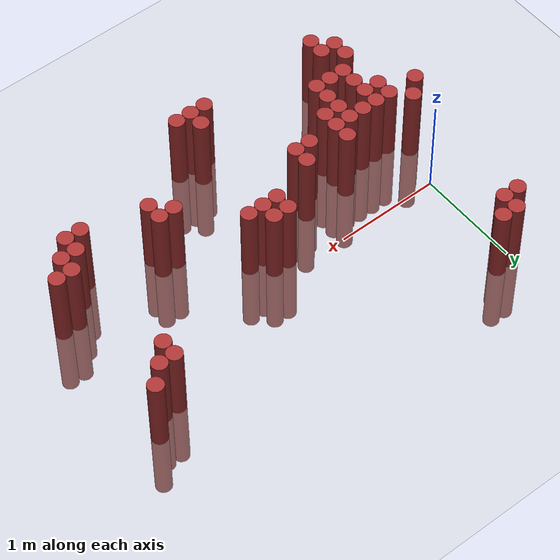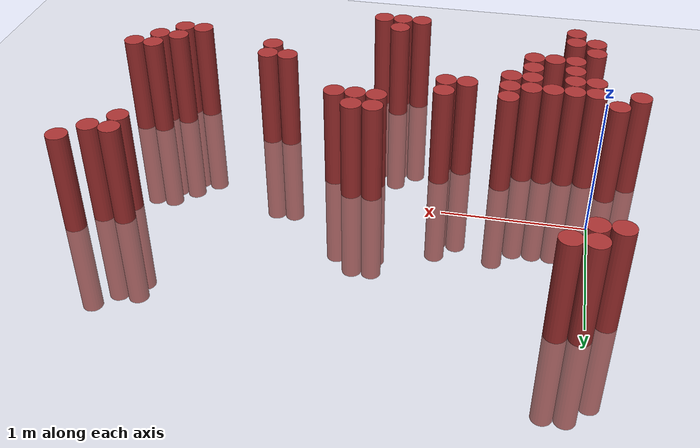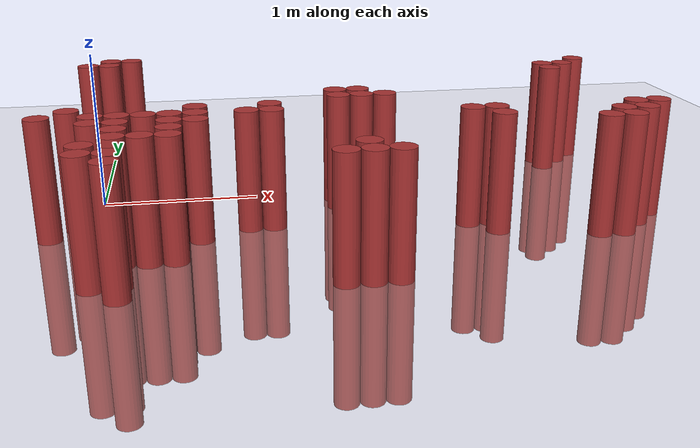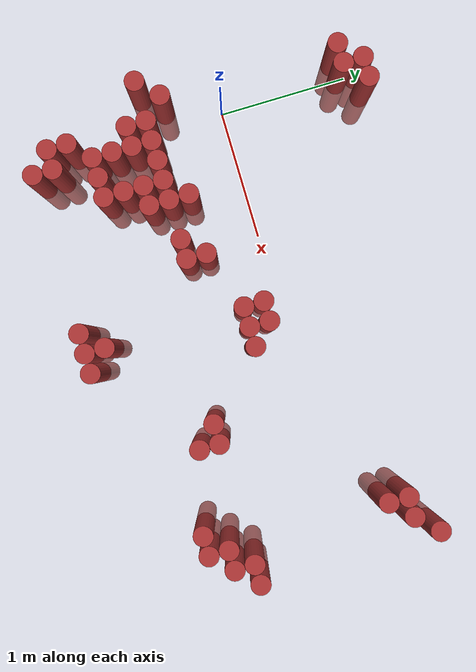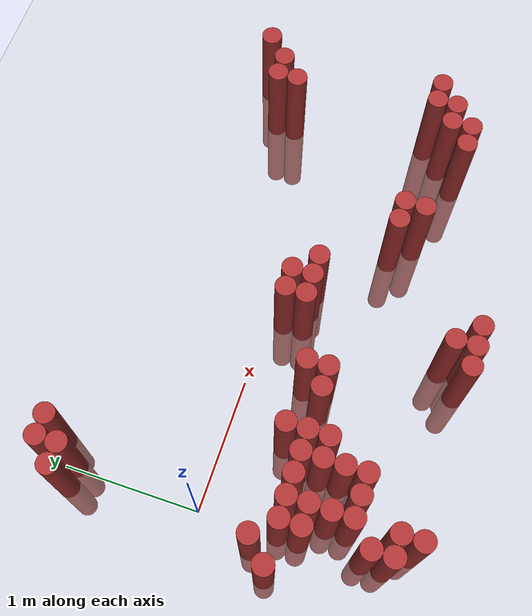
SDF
<sdf version="1.6">
 <world name="default">
  <model name="ground_plane">
   <static>1</static>
   <link name="link">
    <collision name="collision">
     <geometry><plane><normal>0 0 1</normal><size>100 100</size></plane></geometry>
     <surface><friction><ode><mu>100</mu><mu2>50</mu2></ode></friction></surface>
    </collision>
    <visual name="visual">
     <cast_shadows>0</cast_shadows>
     <geometry><plane><normal>0 0 1</normal><size>100 100</size></plane></geometry>
     <material>
      <script><uri>file://media/materials/scripts/gazebo.material</uri><name>Gazebo/Grey</name></script>
     </material>
    </visual>
   </link>
  </model>
  <model name="unit_cylinder_328">
   <static>1</static>
   <pose>-0.275000 -0.575000 0.000000 0.000000 0.000000 0.000000</pose>
   <link name="link">
    <inertial>
     <mass>1</mass>
     <inertia><ixx>0.145833</ixx><ixy>0</ixy><ixz>0</ixz><iyy>0.145833</iyy><iyz>0</iyz><izz>0.125</izz></inertia>
    </inertial>
    <collision name="collision">
     <geometry><cylinder><radius>0.075000</radius><length>1.5</length></cylinder></geometry>
    </collision>
    <visual name="visual">
     <geometry><cylinder><radius>0.075000</radius><length>1.5</length></cylinder></geometry>
     <material>
      <ambient>0.648000 0.192000 0.192000 1</ambient>
      <diffuse>0.648000 0.192000 0.192000 1</diffuse>
     </material>
     <material>
      <script><name>Gazebo/Grey</name><uri>file://media/materials/scripts/gazebo.material</uri></script>
     </material>
    </visual>
   </link>
  </model>
  <model name="unit_cylinder_331">
   <static>1</static>
   <pose>-0.125000 -0.425000 0.000000 0.000000 0.000000 0.000000</pose>
   <link name="link">
    <inertial>
     <mass>1</mass>
     <inertia><ixx>0.145833</ixx><ixy>0</ixy><ixz>0</ixz><iyy>0.145833</iyy><iyz>0</iyz><izz>0.125</izz></inertia>
    </inertial>
    <collision name="collision">
     <geometry><cylinder><radius>0.075000</radius><length>1.5</length></cylinder></geometry>
    </collision>
    <visual name="visual">
     <geometry><cylinder><radius>0.075000</radius><length>1.5</length></cylinder></geometry>
     <material>
      <ambient>0.648000 0.192000 0.192000 1</ambient>
      <diffuse>0.648000 0.192000 0.192000 1</diffuse>
     </material>
     <material>
      <script><name>Gazebo/Grey</name><uri>file://media/materials/scripts/gazebo.material</uri></script>
     </material>
    </visual>
   </link>
  </model>
  <model name="unit_cylinder_332">
   <static>1</static>
   <pose>-0.125000 0.925000 0.000000 0.000000 0.000000 0.000000</pose>
   <link name="link">
    <inertial>
     <mass>1</mass>
     <inertia><ixx>0.145833</ixx><ixy>0</ixy><ixz>0</ixz><iyy>0.145833</iyy><iyz>0</iyz><izz>0.125</izz></inertia>
    </inertial>
    <collision name="collision">
     <geometry><cylinder><radius>0.075000</radius><length>1.5</length></cylinder></geometry>
    </collision>
    <visual name="visual">
     <geometry><cylinder><radius>0.075000</radius><length>1.5</length></cylinder></geometry>
     <material>
      <ambient>0.648000 0.192000 0.192000 1</ambient>
      <diffuse>0.648000 0.192000 0.192000 1</diffuse>
     </material>
     <material>
      <script><name>Gazebo/Grey</name><uri>file://media/materials/scripts/gazebo.material</uri></script>
     </material>
    </visual>
   </link>
  </model>
  <model name="unit_cylinder_334">
   <static>1</static>
   <pose>0.025000 -1.325000 0.000000 0.000000 0.000000 0.000000</pose>
   <link name="link">
    <inertial>
     <mass>1</mass>
     <inertia><ixx>0.145833</ixx><ixy>0</ixy><ixz>0</ixz><iyy>0.145833</iyy><iyz>0</iyz><izz>0.125</izz></inertia>
    </inertial>
    <collision name="collision">
     <geometry><cylinder><radius>0.075000</radius><length>1.5</length></cylinder></geometry>
    </collision>
    <visual name="visual">
     <geometry><cylinder><radius>0.075000</radius><length>1.5</length></cylinder></geometry>
     <material>
      <ambient>0.648000 0.192000 0.192000 1</ambient>
      <diffuse>0.648000 0.192000 0.192000 1</diffuse>
     </material>
     <material>
      <script><name>Gazebo/Grey</name><uri>file://media/materials/scripts/gazebo.material</uri></script>
     </material>
    </visual>
   </link>
  </model>
  <model name="unit_cylinder_335">
   <static>1</static>
   <pose>0.025000 -1.175000 0.000000 0.000000 0.000000 0.000000</pose>
   <link name="link">
    <inertial>
     <mass>1</mass>
     <inertia><ixx>0.145833</ixx><ixy>0</ixy><ixz>0</ixz><iyy>0.145833</iyy><iyz>0</iyz><izz>0.125</izz></inertia>
    </inertial>
    <collision name="collision">
     <geometry><cylinder><radius>0.075000</radius><length>1.5</length></cylinder></geometry>
    </collision>
    <visual name="visual">
     <geometry><cylinder><radius>0.075000</radius><length>1.5</length></cylinder></geometry>
     <material>
      <ambient>0.648000 0.192000 0.192000 1</ambient>
      <diffuse>0.648000 0.192000 0.192000 1</diffuse>
     </material>
     <material>
      <script><name>Gazebo/Grey</name><uri>file://media/materials/scripts/gazebo.material</uri></script>
     </material>
    </visual>
   </link>
  </model>
  <model name="unit_cylinder_336">
   <static>1</static>
   <pose>0.025000 -0.725000 0.000000 0.000000 0.000000 0.000000</pose>
   <link name="link">
    <inertial>
     <mass>1</mass>
     <inertia><ixx>0.145833</ixx><ixy>0</ixy><ixz>0</ixz><iyy>0.145833</iyy><iyz>0</iyz><izz>0.125</izz></inertia>
    </inertial>
    <collision name="collision">
     <geometry><cylinder><radius>0.075000</radius><length>1.5</length></cylinder></geometry>
    </collision>
    <visual name="visual">
     <geometry><cylinder><radius>0.075000</radius><length>1.5</length></cylinder></geometry>
     <material>
      <ambient>0.648000 0.192000 0.192000 1</ambient>
      <diffuse>0.648000 0.192000 0.192000 1</diffuse>
     </material>
     <material>
      <script><name>Gazebo/Grey</name><uri>file://media/materials/scripts/gazebo.material</uri></script>
     </material>
    </visual>
   </link>
  </model>
  <model name="unit_cylinder_337">
   <static>1</static>
   <pose>0.025000 -0.575000 0.000000 0.000000 0.000000 0.000000</pose>
   <link name="link">
    <inertial>
     <mass>1</mass>
     <inertia><ixx>0.145833</ixx><ixy>0</ixy><ixz>0</ixz><iyy>0.145833</iyy><iyz>0</iyz><izz>0.125</izz></inertia>
    </inertial>
    <collision name="collision">
     <geometry><cylinder><radius>0.075000</radius><length>1.5</length></cylinder></geometry>
    </collision>
    <visual name="visual">
     <geometry><cylinder><radius>0.075000</radius><length>1.5</length></cylinder></geometry>
     <material>
      <ambient>0.648000 0.192000 0.192000 1</ambient>
      <diffuse>0.648000 0.192000 0.192000 1</diffuse>
     </material>
     <material>
      <script><name>Gazebo/Grey</name><uri>file://media/materials/scripts/gazebo.material</uri></script>
     </material>
    </visual>
   </link>
  </model>
  <model name="unit_cylinder_338">
   <static>1</static>
   <pose>0.025000 0.925000 0.000000 0.000000 0.000000 0.000000</pose>
   <link name="link">
    <inertial>
     <mass>1</mass>
     <inertia><ixx>0.145833</ixx><ixy>0</ixy><ixz>0</ixz><iyy>0.145833</iyy><iyz>0</iyz><izz>0.125</izz></inertia>
    </inertial>
    <collision name="collision">
     <geometry><cylinder><radius>0.075000</radius><length>1.5</length></cylinder></geometry>
    </collision>
    <visual name="visual">
     <geometry><cylinder><radius>0.075000</radius><length>1.5</length></cylinder></geometry>
     <material>
      <ambient>0.648000 0.192000 0.192000 1</ambient>
      <diffuse>0.648000 0.192000 0.192000 1</diffuse>
     </material>
     <material>
      <script><name>Gazebo/Grey</name><uri>file://media/materials/scripts/gazebo.material</uri></script>
     </material>
    </visual>
   </link>
  </model>
  <model name="unit_cylinder_339">
   <static>1</static>
   <pose>0.025000 1.075000 0.000000 0.000000 0.000000 0.000000</pose>
   <link name="link">
    <inertial>
     <mass>1</mass>
     <inertia><ixx>0.145833</ixx><ixy>0</ixy><ixz>0</ixz><iyy>0.145833</iyy><iyz>0</iyz><izz>0.125</izz></inertia>
    </inertial>
    <collision name="collision">
     <geometry><cylinder><radius>0.075000</radius><length>1.5</length></cylinder></geometry>
    </collision>
    <visual name="visual">
     <geometry><cylinder><radius>0.075000</radius><length>1.5</length></cylinder></geometry>
     <material>
      <ambient>0.648000 0.192000 0.192000 1</ambient>
      <diffuse>0.648000 0.192000 0.192000 1</diffuse>
     </material>
     <material>
      <script><name>Gazebo/Grey</name><uri>file://media/materials/scripts/gazebo.material</uri></script>
     </material>
    </visual>
   </link>
  </model>
  <model name="unit_cylinder_342">
   <static>1</static>
   <pose>0.175000 -1.475000 0.000000 0.000000 0.000000 0.000000</pose>
   <link name="link">
    <inertial>
     <mass>1</mass>
     <inertia><ixx>0.145833</ixx><ixy>0</ixy><ixz>0</ixz><iyy>0.145833</iyy><iyz>0</iyz><izz>0.125</izz></inertia>
    </inertial>
    <collision name="collision">
     <geometry><cylinder><radius>0.075000</radius><length>1.5</length></cylinder></geometry>
    </collision>
    <visual name="visual">
     <geometry><cylinder><radius>0.075000</radius><length>1.5</length></cylinder></geometry>
     <material>
      <ambient>0.648000 0.192000 0.192000 1</ambient>
      <diffuse>0.648000 0.192000 0.192000 1</diffuse>
     </material>
     <material>
      <script><name>Gazebo/Grey</name><uri>file://media/materials/scripts/gazebo.material</uri></script>
     </material>
    </visual>
   </link>
  </model>
  <model name="unit_cylinder_343">
   <static>1</static>
   <pose>0.175000 -1.325000 0.000000 0.000000 0.000000 0.000000</pose>
   <link name="link">
    <inertial>
     <mass>1</mass>
     <inertia><ixx>0.145833</ixx><ixy>0</ixy><ixz>0</ixz><iyy>0.145833</iyy><iyz>0</iyz><izz>0.125</izz></inertia>
    </inertial>
    <collision name="collision">
     <geometry><cylinder><radius>0.075000</radius><length>1.5</length></cylinder></geometry>
    </collision>
    <visual name="visual">
     <geometry><cylinder><radius>0.075000</radius><length>1.5</length></cylinder></geometry>
     <material>
      <ambient>0.648000 0.192000 0.192000 1</ambient>
      <diffuse>0.648000 0.192000 0.192000 1</diffuse>
     </material>
     <material>
      <script><name>Gazebo/Grey</name><uri>file://media/materials/scripts/gazebo.material</uri></script>
     </material>
    </visual>
   </link>
  </model>
  <model name="unit_cylinder_344">
   <static>1</static>
   <pose>0.175000 -1.025000 0.000000 0.000000 0.000000 0.000000</pose>
   <link name="link">
    <inertial>
     <mass>1</mass>
     <inertia><ixx>0.145833</ixx><ixy>0</ixy><ixz>0</ixz><iyy>0.145833</iyy><iyz>0</iyz><izz>0.125</izz></inertia>
    </inertial>
    <collision name="collision">
     <geometry><cylinder><radius>0.075000</radius><length>1.5</length></cylinder></geometry>
    </collision>
    <visual name="visual">
     <geometry><cylinder><radius>0.075000</radius><length>1.5</length></cylinder></geometry>
     <material>
      <ambient>0.648000 0.192000 0.192000 1</ambient>
      <diffuse>0.648000 0.192000 0.192000 1</diffuse>
     </material>
     <material>
      <script><name>Gazebo/Grey</name><uri>file://media/materials/scripts/gazebo.material</uri></script>
     </material>
    </visual>
   </link>
  </model>
  <model name="unit_cylinder_345">
   <static>1</static>
   <pose>0.175000 -0.875000 0.000000 0.000000 0.000000 0.000000</pose>
   <link name="link">
    <inertial>
     <mass>1</mass>
     <inertia><ixx>0.145833</ixx><ixy>0</ixy><ixz>0</ixz><iyy>0.145833</iyy><iyz>0</iyz><izz>0.125</izz></inertia>
    </inertial>
    <collision name="collision">
     <geometry><cylinder><radius>0.075000</radius><length>1.5</length></cylinder></geometry>
    </collision>
    <visual name="visual">
     <geometry><cylinder><radius>0.075000</radius><length>1.5</length></cylinder></geometry>
     <material>
      <ambient>0.648000 0.192000 0.192000 1</ambient>
      <diffuse>0.648000 0.192000 0.192000 1</diffuse>
     </material>
     <material>
      <script><name>Gazebo/Grey</name><uri>file://media/materials/scripts/gazebo.material</uri></script>
     </material>
    </visual>
   </link>
  </model>
  <model name="unit_cylinder_346">
   <static>1</static>
   <pose>0.175000 -0.725000 0.000000 0.000000 0.000000 0.000000</pose>
   <link name="link">
    <inertial>
     <mass>1</mass>
     <inertia><ixx>0.145833</ixx><ixy>0</ixy><ixz>0</ixz><iyy>0.145833</iyy><iyz>0</iyz><izz>0.125</izz></inertia>
    </inertial>
    <collision name="collision">
     <geometry><cylinder><radius>0.075000</radius><length>1.5</length></cylinder></geometry>
    </collision>
    <visual name="visual">
     <geometry><cylinder><radius>0.075000</radius><length>1.5</length></cylinder></geometry>
     <material>
      <ambient>0.648000 0.192000 0.192000 1</ambient>
      <diffuse>0.648000 0.192000 0.192000 1</diffuse>
     </material>
     <material>
      <script><name>Gazebo/Grey</name><uri>file://media/materials/scripts/gazebo.material</uri></script>
     </material>
    </visual>
   </link>
  </model>
  <model name="unit_cylinder_347">
   <static>1</static>
   <pose>0.175000 -0.575000 0.000000 0.000000 0.000000 0.000000</pose>
   <link name="link">
    <inertial>
     <mass>1</mass>
     <inertia><ixx>0.145833</ixx><ixy>0</ixy><ixz>0</ixz><iyy>0.145833</iyy><iyz>0</iyz><izz>0.125</izz></inertia>
    </inertial>
    <collision name="collision">
     <geometry><cylinder><radius>0.075000</radius><length>1.5</length></cylinder></geometry>
    </collision>
    <visual name="visual">
     <geometry><cylinder><radius>0.075000</radius><length>1.5</length></cylinder></geometry>
     <material>
      <ambient>0.648000 0.192000 0.192000 1</ambient>
      <diffuse>0.648000 0.192000 0.192000 1</diffuse>
     </material>
     <material>
      <script><name>Gazebo/Grey</name><uri>file://media/materials/scripts/gazebo.material</uri></script>
     </material>
    </visual>
   </link>
  </model>
  <model name="unit_cylinder_348">
   <static>1</static>
   <pose>0.175000 1.075000 0.000000 0.000000 0.000000 0.000000</pose>
   <link name="link">
    <inertial>
     <mass>1</mass>
     <inertia><ixx>0.145833</ixx><ixy>0</ixy><ixz>0</ixz><iyy>0.145833</iyy><iyz>0</iyz><izz>0.125</izz></inertia>
    </inertial>
    <collision name="collision">
     <geometry><cylinder><radius>0.075000</radius><length>1.5</length></cylinder></geometry>
    </collision>
    <visual name="visual">
     <geometry><cylinder><radius>0.075000</radius><length>1.5</length></cylinder></geometry>
     <material>
      <ambient>0.648000 0.192000 0.192000 1</ambient>
      <diffuse>0.648000 0.192000 0.192000 1</diffuse>
     </material>
     <material>
      <script><name>Gazebo/Grey</name><uri>file://media/materials/scripts/gazebo.material</uri></script>
     </material>
    </visual>
   </link>
  </model>
  <model name="unit_cylinder_355">
   <static>1</static>
   <pose>0.325000 -1.025000 0.000000 0.000000 0.000000 0.000000</pose>
   <link name="link">
    <inertial>
     <mass>1</mass>
     <inertia><ixx>0.145833</ixx><ixy>0</ixy><ixz>0</ixz><iyy>0.145833</iyy><iyz>0</iyz><izz>0.125</izz></inertia>
    </inertial>
    <collision name="collision">
     <geometry><cylinder><radius>0.075000</radius><length>1.5</length></cylinder></geometry>
    </collision>
    <visual name="visual">
     <geometry><cylinder><radius>0.075000</radius><length>1.5</length></cylinder></geometry>
     <material>
      <ambient>0.648000 0.192000 0.192000 1</ambient>
      <diffuse>0.648000 0.192000 0.192000 1</diffuse>
     </material>
     <material>
      <script><name>Gazebo/Grey</name><uri>file://media/materials/scripts/gazebo.material</uri></script>
     </material>
    </visual>
   </link>
  </model>
  <model name="unit_cylinder_356">
   <static>1</static>
   <pose>0.325000 -0.575000 0.000000 0.000000 0.000000 0.000000</pose>
   <link name="link">
    <inertial>
     <mass>1</mass>
     <inertia><ixx>0.145833</ixx><ixy>0</ixy><ixz>0</ixz><iyy>0.145833</iyy><iyz>0</iyz><izz>0.125</izz></inertia>
    </inertial>
    <collision name="collision">
     <geometry><cylinder><radius>0.075000</radius><length>1.5</length></cylinder></geometry>
    </collision>
    <visual name="visual">
     <geometry><cylinder><radius>0.075000</radius><length>1.5</length></cylinder></geometry>
     <material>
      <ambient>0.648000 0.192000 0.192000 1</ambient>
      <diffuse>0.648000 0.192000 0.192000 1</diffuse>
     </material>
     <material>
      <script><name>Gazebo/Grey</name><uri>file://media/materials/scripts/gazebo.material</uri></script>
     </material>
    </visual>
   </link>
  </model>
  <model name="unit_cylinder_361">
   <static>1</static>
   <pose>0.475000 -1.025000 0.000000 0.000000 0.000000 0.000000</pose>
   <link name="link">
    <inertial>
     <mass>1</mass>
     <inertia><ixx>0.145833</ixx><ixy>0</ixy><ixz>0</ixz><iyy>0.145833</iyy><iyz>0</iyz><izz>0.125</izz></inertia>
    </inertial>
    <collision name="collision">
     <geometry><cylinder><radius>0.075000</radius><length>1.5</length></cylinder></geometry>
    </collision>
    <visual name="visual">
     <geometry><cylinder><radius>0.075000</radius><length>1.5</length></cylinder></geometry>
     <material>
      <ambient>0.648000 0.192000 0.192000 1</ambient>
      <diffuse>0.648000 0.192000 0.192000 1</diffuse>
     </material>
     <material>
      <script><name>Gazebo/Grey</name><uri>file://media/materials/scripts/gazebo.material</uri></script>
     </material>
    </visual>
   </link>
  </model>
  <model name="unit_cylinder_362">
   <static>1</static>
   <pose>0.475000 -0.875000 0.000000 0.000000 0.000000 0.000000</pose>
   <link name="link">
    <inertial>
     <mass>1</mass>
     <inertia><ixx>0.145833</ixx><ixy>0</ixy><ixz>0</ixz><iyy>0.145833</iyy><iyz>0</iyz><izz>0.125</izz></inertia>
    </inertial>
    <collision name="collision">
     <geometry><cylinder><radius>0.075000</radius><length>1.5</length></cylinder></geometry>
    </collision>
    <visual name="visual">
     <geometry><cylinder><radius>0.075000</radius><length>1.5</length></cylinder></geometry>
     <material>
      <ambient>0.648000 0.192000 0.192000 1</ambient>
      <diffuse>0.648000 0.192000 0.192000 1</diffuse>
     </material>
     <material>
      <script><name>Gazebo/Grey</name><uri>file://media/materials/scripts/gazebo.material</uri></script>
     </material>
    </visual>
   </link>
  </model>
  <model name="unit_cylinder_363">
   <static>1</static>
   <pose>0.475000 -0.725000 0.000000 0.000000 0.000000 0.000000</pose>
   <link name="link">
    <inertial>
     <mass>1</mass>
     <inertia><ixx>0.145833</ixx><ixy>0</ixy><ixz>0</ixz><iyy>0.145833</iyy><iyz>0</iyz><izz>0.125</izz></inertia>
    </inertial>
    <collision name="collision">
     <geometry><cylinder><radius>0.075000</radius><length>1.5</length></cylinder></geometry>
    </collision>
    <visual name="visual">
     <geometry><cylinder><radius>0.075000</radius><length>1.5</length></cylinder></geometry>
     <material>
      <ambient>0.648000 0.192000 0.192000 1</ambient>
      <diffuse>0.648000 0.192000 0.192000 1</diffuse>
     </material>
     <material>
      <script><name>Gazebo/Grey</name><uri>file://media/materials/scripts/gazebo.material</uri></script>
     </material>
    </visual>
   </link>
  </model>
  <model name="unit_cylinder_364">
   <static>1</static>
   <pose>0.475000 -0.575000 0.000000 0.000000 0.000000 0.000000</pose>
   <link name="link">
    <inertial>
     <mass>1</mass>
     <inertia><ixx>0.145833</ixx><ixy>0</ixy><ixz>0</ixz><iyy>0.145833</iyy><iyz>0</iyz><izz>0.125</izz></inertia>
    </inertial>
    <collision name="collision">
     <geometry><cylinder><radius>0.075000</radius><length>1.5</length></cylinder></geometry>
    </collision>
    <visual name="visual">
     <geometry><cylinder><radius>0.075000</radius><length>1.5</length></cylinder></geometry>
     <material>
      <ambient>0.648000 0.192000 0.192000 1</ambient>
      <diffuse>0.648000 0.192000 0.192000 1</diffuse>
     </material>
     <material>
      <script><name>Gazebo/Grey</name><uri>file://media/materials/scripts/gazebo.material</uri></script>
     </material>
    </visual>
   </link>
  </model>
  <model name="unit_cylinder_369">
   <static>1</static>
   <pose>0.625000 -0.725000 0.000000 0.000000 0.000000 0.000000</pose>
   <link name="link">
    <inertial>
     <mass>1</mass>
     <inertia><ixx>0.145833</ixx><ixy>0</ixy><ixz>0</ixz><iyy>0.145833</iyy><iyz>0</iyz><izz>0.125</izz></inertia>
    </inertial>
    <collision name="collision">
     <geometry><cylinder><radius>0.075000</radius><length>1.5</length></cylinder></geometry>
    </collision>
    <visual name="visual">
     <geometry><cylinder><radius>0.075000</radius><length>1.5</length></cylinder></geometry>
     <material>
      <ambient>0.648000 0.192000 0.192000 1</ambient>
      <diffuse>0.648000 0.192000 0.192000 1</diffuse>
     </material>
     <material>
      <script><name>Gazebo/Grey</name><uri>file://media/materials/scripts/gazebo.material</uri></script>
     </material>
    </visual>
   </link>
  </model>
  <model name="unit_cylinder_370">
   <static>1</static>
   <pose>0.625000 -0.575000 0.000000 0.000000 0.000000 0.000000</pose>
   <link name="link">
    <inertial>
     <mass>1</mass>
     <inertia><ixx>0.145833</ixx><ixy>0</ixy><ixz>0</ixz><iyy>0.145833</iyy><iyz>0</iyz><izz>0.125</izz></inertia>
    </inertial>
    <collision name="collision">
     <geometry><cylinder><radius>0.075000</radius><length>1.5</length></cylinder></geometry>
    </collision>
    <visual name="visual">
     <geometry><cylinder><radius>0.075000</radius><length>1.5</length></cylinder></geometry>
     <material>
      <ambient>0.648000 0.192000 0.192000 1</ambient>
      <diffuse>0.648000 0.192000 0.192000 1</diffuse>
     </material>
     <material>
      <script><name>Gazebo/Grey</name><uri>file://media/materials/scripts/gazebo.material</uri></script>
     </material>
    </visual>
   </link>
  </model>
  <model name="unit_cylinder_371">
   <static>1</static>
   <pose>0.625000 -0.425000 0.000000 0.000000 0.000000 0.000000</pose>
   <link name="link">
    <inertial>
     <mass>1</mass>
     <inertia><ixx>0.145833</ixx><ixy>0</ixy><ixz>0</ixz><iyy>0.145833</iyy><iyz>0</iyz><izz>0.125</izz></inertia>
    </inertial>
    <collision name="collision">
     <geometry><cylinder><radius>0.075000</radius><length>1.5</length></cylinder></geometry>
    </collision>
    <visual name="visual">
     <geometry><cylinder><radius>0.075000</radius><length>1.5</length></cylinder></geometry>
     <material>
      <ambient>0.648000 0.192000 0.192000 1</ambient>
      <diffuse>0.648000 0.192000 0.192000 1</diffuse>
     </material>
     <material>
      <script><name>Gazebo/Grey</name><uri>file://media/materials/scripts/gazebo.material</uri></script>
     </material>
    </visual>
   </link>
  </model>
  <model name="unit_cylinder_384">
   <static>1</static>
   <pose>0.925000 -0.575000 0.000000 0.000000 0.000000 0.000000</pose>
   <link name="link">
    <inertial>
     <mass>1</mass>
     <inertia><ixx>0.145833</ixx><ixy>0</ixy><ixz>0</ixz><iyy>0.145833</iyy><iyz>0</iyz><izz>0.125</izz></inertia>
    </inertial>
    <collision name="collision">
     <geometry><cylinder><radius>0.075000</radius><length>1.5</length></cylinder></geometry>
    </collision>
    <visual name="visual">
     <geometry><cylinder><radius>0.075000</radius><length>1.5</length></cylinder></geometry>
     <material>
      <ambient>0.648000 0.192000 0.192000 1</ambient>
      <diffuse>0.648000 0.192000 0.192000 1</diffuse>
     </material>
     <material>
      <script><name>Gazebo/Grey</name><uri>file://media/materials/scripts/gazebo.material</uri></script>
     </material>
    </visual>
   </link>
  </model>
  <model name="unit_cylinder_389">
   <static>1</static>
   <pose>1.075000 -0.575000 0.000000 0.000000 0.000000 0.000000</pose>
   <link name="link">
    <inertial>
     <mass>1</mass>
     <inertia><ixx>0.145833</ixx><ixy>0</ixy><ixz>0</ixz><iyy>0.145833</iyy><iyz>0</iyz><izz>0.125</izz></inertia>
    </inertial>
    <collision name="collision">
     <geometry><cylinder><radius>0.075000</radius><length>1.5</length></cylinder></geometry>
    </collision>
    <visual name="visual">
     <geometry><cylinder><radius>0.075000</radius><length>1.5</length></cylinder></geometry>
     <material>
      <ambient>0.648000 0.192000 0.192000 1</ambient>
      <diffuse>0.648000 0.192000 0.192000 1</diffuse>
     </material>
     <material>
      <script><name>Gazebo/Grey</name><uri>file://media/materials/scripts/gazebo.material</uri></script>
     </material>
    </visual>
   </link>
  </model>
  <model name="unit_cylinder_390">
   <static>1</static>
   <pose>1.075000 -0.425000 0.000000 0.000000 0.000000 0.000000</pose>
   <link name="link">
    <inertial>
     <mass>1</mass>
     <inertia><ixx>0.145833</ixx><ixy>0</ixy><ixz>0</ixz><iyy>0.145833</iyy><iyz>0</iyz><izz>0.125</izz></inertia>
    </inertial>
    <collision name="collision">
     <geometry><cylinder><radius>0.075000</radius><length>1.5</length></cylinder></geometry>
    </collision>
    <visual name="visual">
     <geometry><cylinder><radius>0.075000</radius><length>1.5</length></cylinder></geometry>
     <material>
      <ambient>0.648000 0.192000 0.192000 1</ambient>
      <diffuse>0.648000 0.192000 0.192000 1</diffuse>
     </material>
     <material>
      <script><name>Gazebo/Grey</name><uri>file://media/materials/scripts/gazebo.material</uri></script>
     </material>
    </visual>
   </link>
  </model>
  <model name="unit_cylinder_392">
   <static>1</static>
   <pose>1.375000 -1.475000 0.000000 0.000000 0.000000 0.000000</pose>
   <link name="link">
    <inertial>
     <mass>1</mass>
     <inertia><ixx>0.145833</ixx><ixy>0</ixy><ixz>0</ixz><iyy>0.145833</iyy><iyz>0</iyz><izz>0.125</izz></inertia>
    </inertial>
    <collision name="collision">
     <geometry><cylinder><radius>0.075000</radius><length>1.5</length></cylinder></geometry>
    </collision>
    <visual name="visual">
     <geometry><cylinder><radius>0.075000</radius><length>1.5</length></cylinder></geometry>
     <material>
      <ambient>0.648000 0.192000 0.192000 1</ambient>
      <diffuse>0.648000 0.192000 0.192000 1</diffuse>
     </material>
     <material>
      <script><name>Gazebo/Grey</name><uri>file://media/materials/scripts/gazebo.material</uri></script>
     </material>
    </visual>
   </link>
  </model>
  <model name="unit_cylinder_393">
   <static>1</static>
   <pose>1.525000 -1.475000 0.000000 0.000000 0.000000 0.000000</pose>
   <link name="link">
    <inertial>
     <mass>1</mass>
     <inertia><ixx>0.145833</ixx><ixy>0</ixy><ixz>0</ixz><iyy>0.145833</iyy><iyz>0</iyz><izz>0.125</izz></inertia>
    </inertial>
    <collision name="collision">
     <geometry><cylinder><radius>0.075000</radius><length>1.5</length></cylinder></geometry>
    </collision>
    <visual name="visual">
     <geometry><cylinder><radius>0.075000</radius><length>1.5</length></cylinder></geometry>
     <material>
      <ambient>0.648000 0.192000 0.192000 1</ambient>
      <diffuse>0.648000 0.192000 0.192000 1</diffuse>
     </material>
     <material>
      <script><name>Gazebo/Grey</name><uri>file://media/materials/scripts/gazebo.material</uri></script>
     </material>
    </visual>
   </link>
  </model>
  <model name="unit_cylinder_394">
   <static>1</static>
   <pose>1.525000 -1.325000 0.000000 0.000000 0.000000 0.000000</pose>
   <link name="link">
    <inertial>
     <mass>1</mass>
     <inertia><ixx>0.145833</ixx><ixy>0</ixy><ixz>0</ixz><iyy>0.145833</iyy><iyz>0</iyz><izz>0.125</izz></inertia>
    </inertial>
    <collision name="collision">
     <geometry><cylinder><radius>0.075000</radius><length>1.5</length></cylinder></geometry>
    </collision>
    <visual name="visual">
     <geometry><cylinder><radius>0.075000</radius><length>1.5</length></cylinder></geometry>
     <material>
      <ambient>0.648000 0.192000 0.192000 1</ambient>
      <diffuse>0.648000 0.192000 0.192000 1</diffuse>
     </material>
     <material>
      <script><name>Gazebo/Grey</name><uri>file://media/materials/scripts/gazebo.material</uri></script>
     </material>
    </visual>
   </link>
  </model>
  <model name="unit_cylinder_395">
   <static>1</static>
   <pose>1.525000 -0.275000 0.000000 0.000000 0.000000 0.000000</pose>
   <link name="link">
    <inertial>
     <mass>1</mass>
     <inertia><ixx>0.145833</ixx><ixy>0</ixy><ixz>0</ixz><iyy>0.145833</iyy><iyz>0</iyz><izz>0.125</izz></inertia>
    </inertial>
    <collision name="collision">
     <geometry><cylinder><radius>0.075000</radius><length>1.5</length></cylinder></geometry>
    </collision>
    <visual name="visual">
     <geometry><cylinder><radius>0.075000</radius><length>1.5</length></cylinder></geometry>
     <material>
      <ambient>0.648000 0.192000 0.192000 1</ambient>
      <diffuse>0.648000 0.192000 0.192000 1</diffuse>
     </material>
     <material>
      <script><name>Gazebo/Grey</name><uri>file://media/materials/scripts/gazebo.material</uri></script>
     </material>
    </visual>
   </link>
  </model>
  <model name="unit_cylinder_396">
   <static>1</static>
   <pose>1.525000 -0.125000 0.000000 0.000000 0.000000 0.000000</pose>
   <link name="link">
    <inertial>
     <mass>1</mass>
     <inertia><ixx>0.145833</ixx><ixy>0</ixy><ixz>0</ixz><iyy>0.145833</iyy><iyz>0</iyz><izz>0.125</izz></inertia>
    </inertial>
    <collision name="collision">
     <geometry><cylinder><radius>0.075000</radius><length>1.5</length></cylinder></geometry>
    </collision>
    <visual name="visual">
     <geometry><cylinder><radius>0.075000</radius><length>1.5</length></cylinder></geometry>
     <material>
      <ambient>0.648000 0.192000 0.192000 1</ambient>
      <diffuse>0.648000 0.192000 0.192000 1</diffuse>
     </material>
     <material>
      <script><name>Gazebo/Grey</name><uri>file://media/materials/scripts/gazebo.material</uri></script>
     </material>
    </visual>
   </link>
  </model>
  <model name="unit_cylinder_397">
   <static>1</static>
   <pose>1.675000 -1.475000 0.000000 0.000000 0.000000 0.000000</pose>
   <link name="link">
    <inertial>
     <mass>1</mass>
     <inertia><ixx>0.145833</ixx><ixy>0</ixy><ixz>0</ixz><iyy>0.145833</iyy><iyz>0</iyz><izz>0.125</izz></inertia>
    </inertial>
    <collision name="collision">
     <geometry><cylinder><radius>0.075000</radius><length>1.5</length></cylinder></geometry>
    </collision>
    <visual name="visual">
     <geometry><cylinder><radius>0.075000</radius><length>1.5</length></cylinder></geometry>
     <material>
      <ambient>0.648000 0.192000 0.192000 1</ambient>
      <diffuse>0.648000 0.192000 0.192000 1</diffuse>
     </material>
     <material>
      <script><name>Gazebo/Grey</name><uri>file://media/materials/scripts/gazebo.material</uri></script>
     </material>
    </visual>
   </link>
  </model>
  <model name="unit_cylinder_398">
   <static>1</static>
   <pose>1.675000 -0.275000 0.000000 0.000000 0.000000 0.000000</pose>
   <link name="link">
    <inertial>
     <mass>1</mass>
     <inertia><ixx>0.145833</ixx><ixy>0</ixy><ixz>0</ixz><iyy>0.145833</iyy><iyz>0</iyz><izz>0.125</izz></inertia>
    </inertial>
    <collision name="collision">
     <geometry><cylinder><radius>0.075000</radius><length>1.5</length></cylinder></geometry>
    </collision>
    <visual name="visual">
     <geometry><cylinder><radius>0.075000</radius><length>1.5</length></cylinder></geometry>
     <material>
      <ambient>0.648000 0.192000 0.192000 1</ambient>
      <diffuse>0.648000 0.192000 0.192000 1</diffuse>
     </material>
     <material>
      <script><name>Gazebo/Grey</name><uri>file://media/materials/scripts/gazebo.material</uri></script>
     </material>
    </visual>
   </link>
  </model>
  <model name="unit_cylinder_399">
   <static>1</static>
   <pose>1.675000 -0.125000 0.000000 0.000000 0.000000 0.000000</pose>
   <link name="link">
    <inertial>
     <mass>1</mass>
     <inertia><ixx>0.145833</ixx><ixy>0</ixy><ixz>0</ixz><iyy>0.145833</iyy><iyz>0</iyz><izz>0.125</izz></inertia>
    </inertial>
    <collision name="collision">
     <geometry><cylinder><radius>0.075000</radius><length>1.5</length></cylinder></geometry>
    </collision>
    <visual name="visual">
     <geometry><cylinder><radius>0.075000</radius><length>1.5</length></cylinder></geometry>
     <material>
      <ambient>0.648000 0.192000 0.192000 1</ambient>
      <diffuse>0.648000 0.192000 0.192000 1</diffuse>
     </material>
     <material>
      <script><name>Gazebo/Grey</name><uri>file://media/materials/scripts/gazebo.material</uri></script>
     </material>
    </visual>
   </link>
  </model>
  <model name="unit_cylinder_405">
   <static>1</static>
   <pose>1.825000 -0.275000 0.000000 0.000000 0.000000 0.000000</pose>
   <link name="link">
    <inertial>
     <mass>1</mass>
     <inertia><ixx>0.145833</ixx><ixy>0</ixy><ixz>0</ixz><iyy>0.145833</iyy><iyz>0</iyz><izz>0.125</izz></inertia>
    </inertial>
    <collision name="collision">
     <geometry><cylinder><radius>0.075000</radius><length>1.5</length></cylinder></geometry>
    </collision>
    <visual name="visual">
     <geometry><cylinder><radius>0.075000</radius><length>1.5</length></cylinder></geometry>
     <material>
      <ambient>0.648000 0.192000 0.192000 1</ambient>
      <diffuse>0.648000 0.192000 0.192000 1</diffuse>
     </material>
     <material>
      <script><name>Gazebo/Grey</name><uri>file://media/materials/scripts/gazebo.material</uri></script>
     </material>
    </visual>
   </link>
  </model>
  <model name="unit_cylinder_428">
   <static>1</static>
   <pose>2.275000 -0.725000 0.000000 0.000000 0.000000 0.000000</pose>
   <link name="link">
    <inertial>
     <mass>1</mass>
     <inertia><ixx>0.145833</ixx><ixy>0</ixy><ixz>0</ixz><iyy>0.145833</iyy><iyz>0</iyz><izz>0.125</izz></inertia>
    </inertial>
    <collision name="collision">
     <geometry><cylinder><radius>0.075000</radius><length>1.5</length></cylinder></geometry>
    </collision>
    <visual name="visual">
     <geometry><cylinder><radius>0.075000</radius><length>1.5</length></cylinder></geometry>
     <material>
      <ambient>0.648000 0.192000 0.192000 1</ambient>
      <diffuse>0.648000 0.192000 0.192000 1</diffuse>
     </material>
     <material>
      <script><name>Gazebo/Grey</name><uri>file://media/materials/scripts/gazebo.material</uri></script>
     </material>
    </visual>
   </link>
  </model>
  <model name="unit_cylinder_435">
   <static>1</static>
   <pose>2.425000 -0.875000 0.000000 0.000000 0.000000 0.000000</pose>
   <link name="link">
    <inertial>
     <mass>1</mass>
     <inertia><ixx>0.145833</ixx><ixy>0</ixy><ixz>0</ixz><iyy>0.145833</iyy><iyz>0</iyz><izz>0.125</izz></inertia>
    </inertial>
    <collision name="collision">
     <geometry><cylinder><radius>0.075000</radius><length>1.5</length></cylinder></geometry>
    </collision>
    <visual name="visual">
     <geometry><cylinder><radius>0.075000</radius><length>1.5</length></cylinder></geometry>
     <material>
      <ambient>0.648000 0.192000 0.192000 1</ambient>
      <diffuse>0.648000 0.192000 0.192000 1</diffuse>
     </material>
     <material>
      <script><name>Gazebo/Grey</name><uri>file://media/materials/scripts/gazebo.material</uri></script>
     </material>
    </visual>
   </link>
  </model>
  <model name="unit_cylinder_436">
   <static>1</static>
   <pose>2.425000 -0.725000 0.000000 0.000000 0.000000 0.000000</pose>
   <link name="link">
    <inertial>
     <mass>1</mass>
     <inertia><ixx>0.145833</ixx><ixy>0</ixy><ixz>0</ixz><iyy>0.145833</iyy><iyz>0</iyz><izz>0.125</izz></inertia>
    </inertial>
    <collision name="collision">
     <geometry><cylinder><radius>0.075000</radius><length>1.5</length></cylinder></geometry>
    </collision>
    <visual name="visual">
     <geometry><cylinder><radius>0.075000</radius><length>1.5</length></cylinder></geometry>
     <material>
      <ambient>0.648000 0.192000 0.192000 1</ambient>
      <diffuse>0.648000 0.192000 0.192000 1</diffuse>
     </material>
     <material>
      <script><name>Gazebo/Grey</name><uri>file://media/materials/scripts/gazebo.material</uri></script>
     </material>
    </visual>
   </link>
  </model>
  <model name="unit_cylinder_451">
   <static>1</static>
   <pose>3.025000 -1.025000 0.000000 0.000000 0.000000 0.000000</pose>
   <link name="link">
    <inertial>
     <mass>1</mass>
     <inertia><ixx>0.145833</ixx><ixy>0</ixy><ixz>0</ixz><iyy>0.145833</iyy><iyz>0</iyz><izz>0.125</izz></inertia>
    </inertial>
    <collision name="collision">
     <geometry><cylinder><radius>0.075000</radius><length>1.5</length></cylinder></geometry>
    </collision>
    <visual name="visual">
     <geometry><cylinder><radius>0.075000</radius><length>1.5</length></cylinder></geometry>
     <material>
      <ambient>0.648000 0.192000 0.192000 1</ambient>
      <diffuse>0.648000 0.192000 0.192000 1</diffuse>
     </material>
     <material>
      <script><name>Gazebo/Grey</name><uri>file://media/materials/scripts/gazebo.material</uri></script>
     </material>
    </visual>
   </link>
  </model>
  <model name="unit_cylinder_457">
   <static>1</static>
   <pose>3.175000 -1.025000 0.000000 0.000000 0.000000 0.000000</pose>
   <link name="link">
    <inertial>
     <mass>1</mass>
     <inertia><ixx>0.145833</ixx><ixy>0</ixy><ixz>0</ixz><iyy>0.145833</iyy><iyz>0</iyz><izz>0.125</izz></inertia>
    </inertial>
    <collision name="collision">
     <geometry><cylinder><radius>0.075000</radius><length>1.5</length></cylinder></geometry>
    </collision>
    <visual name="visual">
     <geometry><cylinder><radius>0.075000</radius><length>1.5</length></cylinder></geometry>
     <material>
      <ambient>0.648000 0.192000 0.192000 1</ambient>
      <diffuse>0.648000 0.192000 0.192000 1</diffuse>
     </material>
     <material>
      <script><name>Gazebo/Grey</name><uri>file://media/materials/scripts/gazebo.material</uri></script>
     </material>
    </visual>
   </link>
  </model>
  <model name="unit_cylinder_458">
   <static>1</static>
   <pose>3.175000 -0.875000 0.000000 0.000000 0.000000 0.000000</pose>
   <link name="link">
    <inertial>
     <mass>1</mass>
     <inertia><ixx>0.145833</ixx><ixy>0</ixy><ixz>0</ixz><iyy>0.145833</iyy><iyz>0</iyz><izz>0.125</izz></inertia>
    </inertial>
    <collision name="collision">
     <geometry><cylinder><radius>0.075000</radius><length>1.5</length></cylinder></geometry>
    </collision>
    <visual name="visual">
     <geometry><cylinder><radius>0.075000</radius><length>1.5</length></cylinder></geometry>
     <material>
      <ambient>0.648000 0.192000 0.192000 1</ambient>
      <diffuse>0.648000 0.192000 0.192000 1</diffuse>
     </material>
     <material>
      <script><name>Gazebo/Grey</name><uri>file://media/materials/scripts/gazebo.material</uri></script>
     </material>
    </visual>
   </link>
  </model>
  <model name="unit_cylinder_459">
   <static>1</static>
   <pose>3.175000 0.325000 0.000000 0.000000 0.000000 0.000000</pose>
   <link name="link">
    <inertial>
     <mass>1</mass>
     <inertia><ixx>0.145833</ixx><ixy>0</ixy><ixz>0</ixz><iyy>0.145833</iyy><iyz>0</iyz><izz>0.125</izz></inertia>
    </inertial>
    <collision name="collision">
     <geometry><cylinder><radius>0.075000</radius><length>1.5</length></cylinder></geometry>
    </collision>
    <visual name="visual">
     <geometry><cylinder><radius>0.075000</radius><length>1.5</length></cylinder></geometry>
     <material>
      <ambient>0.648000 0.192000 0.192000 1</ambient>
      <diffuse>0.648000 0.192000 0.192000 1</diffuse>
     </material>
     <material>
      <script><name>Gazebo/Grey</name><uri>file://media/materials/scripts/gazebo.material</uri></script>
     </material>
    </visual>
   </link>
  </model>
  <model name="unit_cylinder_460">
   <static>1</static>
   <pose>3.175000 0.475000 0.000000 0.000000 0.000000 0.000000</pose>
   <link name="link">
    <inertial>
     <mass>1</mass>
     <inertia><ixx>0.145833</ixx><ixy>0</ixy><ixz>0</ixz><iyy>0.145833</iyy><iyz>0</iyz><izz>0.125</izz></inertia>
    </inertial>
    <collision name="collision">
     <geometry><cylinder><radius>0.075000</radius><length>1.5</length></cylinder></geometry>
    </collision>
    <visual name="visual">
     <geometry><cylinder><radius>0.075000</radius><length>1.5</length></cylinder></geometry>
     <material>
      <ambient>0.648000 0.192000 0.192000 1</ambient>
      <diffuse>0.648000 0.192000 0.192000 1</diffuse>
     </material>
     <material>
      <script><name>Gazebo/Grey</name><uri>file://media/materials/scripts/gazebo.material</uri></script>
     </material>
    </visual>
   </link>
  </model>
  <model name="unit_cylinder_464">
   <static>1</static>
   <pose>3.325000 -0.875000 0.000000 0.000000 0.000000 0.000000</pose>
   <link name="link">
    <inertial>
     <mass>1</mass>
     <inertia><ixx>0.145833</ixx><ixy>0</ixy><ixz>0</ixz><iyy>0.145833</iyy><iyz>0</iyz><izz>0.125</izz></inertia>
    </inertial>
    <collision name="collision">
     <geometry><cylinder><radius>0.075000</radius><length>1.5</length></cylinder></geometry>
    </collision>
    <visual name="visual">
     <geometry><cylinder><radius>0.075000</radius><length>1.5</length></cylinder></geometry>
     <material>
      <ambient>0.648000 0.192000 0.192000 1</ambient>
      <diffuse>0.648000 0.192000 0.192000 1</diffuse>
     </material>
     <material>
      <script><name>Gazebo/Grey</name><uri>file://media/materials/scripts/gazebo.material</uri></script>
     </material>
    </visual>
   </link>
  </model>
  <model name="unit_cylinder_465">
   <static>1</static>
   <pose>3.325000 -0.725000 0.000000 0.000000 0.000000 0.000000</pose>
   <link name="link">
    <inertial>
     <mass>1</mass>
     <inertia><ixx>0.145833</ixx><ixy>0</ixy><ixz>0</ixz><iyy>0.145833</iyy><iyz>0</iyz><izz>0.125</izz></inertia>
    </inertial>
    <collision name="collision">
     <geometry><cylinder><radius>0.075000</radius><length>1.5</length></cylinder></geometry>
    </collision>
    <visual name="visual">
     <geometry><cylinder><radius>0.075000</radius><length>1.5</length></cylinder></geometry>
     <material>
      <ambient>0.648000 0.192000 0.192000 1</ambient>
      <diffuse>0.648000 0.192000 0.192000 1</diffuse>
     </material>
     <material>
      <script><name>Gazebo/Grey</name><uri>file://media/materials/scripts/gazebo.material</uri></script>
     </material>
    </visual>
   </link>
  </model>
  <model name="unit_cylinder_466">
   <static>1</static>
   <pose>3.325000 0.475000 0.000000 0.000000 0.000000 0.000000</pose>
   <link name="link">
    <inertial>
     <mass>1</mass>
     <inertia><ixx>0.145833</ixx><ixy>0</ixy><ixz>0</ixz><iyy>0.145833</iyy><iyz>0</iyz><izz>0.125</izz></inertia>
    </inertial>
    <collision name="collision">
     <geometry><cylinder><radius>0.075000</radius><length>1.5</length></cylinder></geometry>
    </collision>
    <visual name="visual">
     <geometry><cylinder><radius>0.075000</radius><length>1.5</length></cylinder></geometry>
     <material>
      <ambient>0.648000 0.192000 0.192000 1</ambient>
      <diffuse>0.648000 0.192000 0.192000 1</diffuse>
     </material>
     <material>
      <script><name>Gazebo/Grey</name><uri>file://media/materials/scripts/gazebo.material</uri></script>
     </material>
    </visual>
   </link>
  </model>
  <model name="unit_cylinder_471">
   <static>1</static>
   <pose>3.475000 -0.725000 0.000000 0.000000 0.000000 0.000000</pose>
   <link name="link">
    <inertial>
     <mass>1</mass>
     <inertia><ixx>0.145833</ixx><ixy>0</ixy><ixz>0</ixz><iyy>0.145833</iyy><iyz>0</iyz><izz>0.125</izz></inertia>
    </inertial>
    <collision name="collision">
     <geometry><cylinder><radius>0.075000</radius><length>1.5</length></cylinder></geometry>
    </collision>
    <visual name="visual">
     <geometry><cylinder><radius>0.075000</radius><length>1.5</length></cylinder></geometry>
     <material>
      <ambient>0.648000 0.192000 0.192000 1</ambient>
      <diffuse>0.648000 0.192000 0.192000 1</diffuse>
     </material>
     <material>
      <script><name>Gazebo/Grey</name><uri>file://media/materials/scripts/gazebo.material</uri></script>
     </material>
    </visual>
   </link>
  </model>
  <model name="unit_cylinder_472">
   <static>1</static>
   <pose>3.475000 0.625000 0.000000 0.000000 0.000000 0.000000</pose>
   <link name="link">
    <inertial>
     <mass>1</mass>
     <inertia><ixx>0.145833</ixx><ixy>0</ixy><ixz>0</ixz><iyy>0.145833</iyy><iyz>0</iyz><izz>0.125</izz></inertia>
    </inertial>
    <collision name="collision">
     <geometry><cylinder><radius>0.075000</radius><length>1.5</length></cylinder></geometry>
    </collision>
    <visual name="visual">
     <geometry><cylinder><radius>0.075000</radius><length>1.5</length></cylinder></geometry>
     <material>
      <ambient>0.648000 0.192000 0.192000 1</ambient>
      <diffuse>0.648000 0.192000 0.192000 1</diffuse>
     </material>
     <material>
      <script><name>Gazebo/Grey</name><uri>file://media/materials/scripts/gazebo.material</uri></script>
     </material>
    </visual>
   </link>
  </model>
 </world>
</sdf>
